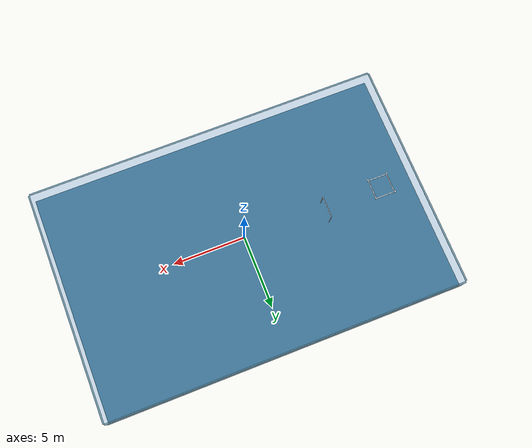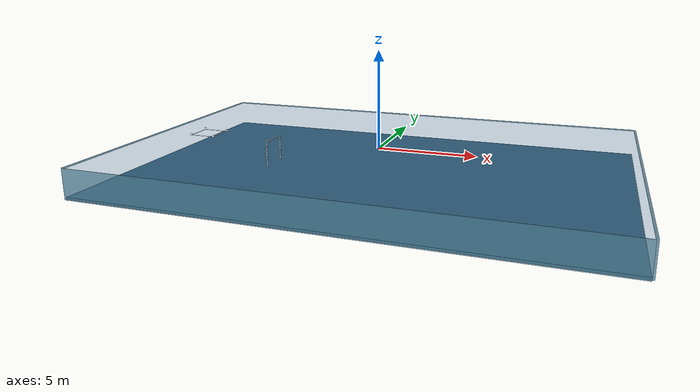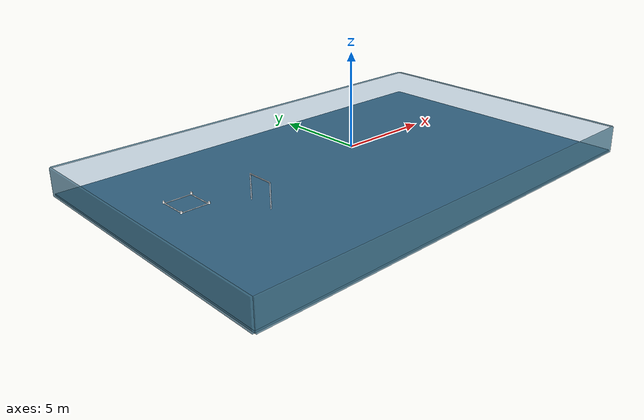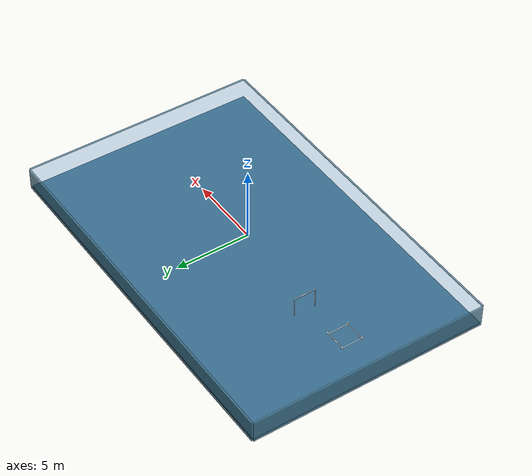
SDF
<sdf version="1.6">
 <world name="sauvc_qualification">
  <scene><ambient>0.1 0.3 0.4</ambient><background>0.0 0.3 0.5</background><shadows>true</shadows></scene>
  <physics name="default" type="ode">
   <max_step_size>0.001</max_step_size>
   <real_time_factor>1.0</real_time_factor>
   <real_time_update_rate>1000</real_time_update_rate>
   <gravity>0 0 -9.81</gravity>
  </physics>
  <plugin name="ignition::gazebo::systems::Physics" filename="ignition-gazebo-physics-system"/>
  <plugin name="ignition::gazebo::systems::UserCommands" filename="ignition-gazebo-user-commands-system"/>
  <plugin name="ignition::gazebo::systems::SceneBroadcaster" filename="ignition-gazebo-scene-broadcaster-system"/>
  <plugin filename="ignition-gazebo-sensors-system" name="ignition::gazebo::systems::Sensors">
   <render_engine>ogre2</render_engine>
  </plugin>
  <plugin filename="ignition-gazebo-contact-system" name="ignition::gazebo::systems::Contact"/>
  <plugin filename="ignition-gazebo-buoyancy-system" name="ignition::gazebo::systems::Buoyancy">
   <uniform_fluid_density>1000</uniform_fluid_density>
  </plugin>
  <light type="directional" name="sun">
   <pose>0 0 10 0 0 0</pose>
   <diffuse>0.8 0.8 0.8 1</diffuse>
   <specular>0.3 0.3 0.3 1</specular>
   <attenuation>
    <range>1000</range>
    <constant>0.9</constant>
    <linear>0.01</linear>
    <quadratic>0.001</quadratic>
   </attenuation>
   <direction>-0.5 0.1 -0.9</direction>
  </light>
  <model name="qualification_pool">
   <static>true</static>
   <link name="pool_link">
    <collision name="floor_collision">
     <pose>0 0 -1.4 0 0 0</pose>
     <geometry><box><size>25 16 0.1</size></box></geometry>
    </collision>
    <visual name="floor_visual">
     <pose>0 0 -1.4 0 0 0</pose>
     <geometry><box><size>25 16 0.1</size></box></geometry>
     <material>
      <ambient>0.2 0.4 0.5 1</ambient>
      <diffuse>0.2 0.4 0.5 1</diffuse>
      <specular>0.1 0.1 0.1 1</specular>
     </material>
    </visual>
    <collision name="wall1_collision">
     <pose>0 8.05 -0.7 0 0 0</pose>
     <geometry><box><size>25 0.1 1.5</size></box></geometry>
    </collision>
    <visual name="wall1_visual">
     <pose>0 8.05 -0.7 0 0 0</pose>
     <geometry><box><size>25 0.1 1.5</size></box></geometry>
     <material>
      <ambient>0.3 0.5 0.6 0.8</ambient>
      <diffuse>0.3 0.5 0.6 0.8</diffuse>
      <specular>0.2 0.2 0.2 1</specular>
     </material>
    </visual>
    <collision name="wall2_collision">
     <pose>0 -8.05 -0.7 0 0 0</pose>
     <geometry><box><size>25 0.1 1.5</size></box></geometry>
    </collision>
    <visual name="wall2_visual">
     <pose>0 -8.05 -0.7 0 0 0</pose>
     <geometry><box><size>25 0.1 1.5</size></box></geometry>
     <material>
      <ambient>0.3 0.5 0.6 0.8</ambient>
      <diffuse>0.3 0.5 0.6 0.8</diffuse>
      <specular>0.2 0.2 0.2 1</specular>
     </material>
    </visual>
    <collision name="wall3_collision">
     <pose>12.55 0 -0.7 0 0 0</pose>
     <geometry><box><size>0.1 16 1.5</size></box></geometry>
    </collision>
    <visual name="wall3_visual">
     <pose>12.55 0 -0.7 0 0 0</pose>
     <geometry><box><size>0.1 16 1.5</size></box></geometry>
     <material>
      <ambient>0.3 0.5 0.6 0.8</ambient>
      <diffuse>0.3 0.5 0.6 0.8</diffuse>
      <specular>0.2 0.2 0.2 1</specular>
     </material>
    </visual>
    <collision name="wall4_collision">
     <pose>-12.55 0 -0.7 0 0 0</pose>
     <geometry><box><size>0.1 16 1.5</size></box></geometry>
    </collision>
    <visual name="wall4_visual">
     <pose>-12.55 0 -0.7 0 0 0</pose>
     <geometry><box><size>0.1 16 1.5</size></box></geometry>
     <material>
      <ambient>0.3 0.5 0.6 0.8</ambient>
      <diffuse>0.3 0.5 0.6 0.8</diffuse>
      <specular>0.2 0.2 0.2 1</specular>
     </material>
    </visual>
    <visual name="water_surface">
     <geometry><box><size>25 16 0.01</size></box></geometry>
     <material>
      <ambient>0.3 0.5 0.7 0.3</ambient>
      <diffuse>0.3 0.5 0.7 0.3</diffuse>
      <specular>0.5 0.5 0.5 0.3</specular>
     </material>
    </visual>
   </link>
  </model>
  <model name="starting_zone">
   <static>true</static>
   <pose>-10 0 0.005 0 0 0</pose>
   <link name="zone_link">
    <visual name="strip_top">
     <pose>0 0.675 0 0 0 0</pose>
     <geometry><box><size>1.4 0.05 0.01</size></box></geometry>
     <material><ambient>1 1 1 1</ambient><diffuse>1 1 1 1</diffuse><emissive>1 1 1 1</emissive></material>
    </visual>
    <visual name="strip_bottom">
     <pose>0 -0.675 0 0 0 0</pose>
     <geometry><box><size>1.4 0.05 0.01</size></box></geometry>
     <material><ambient>1 1 1 1</ambient><diffuse>1 1 1 1</diffuse><emissive>1 1 1 1</emissive></material>
    </visual>
    <visual name="strip_left">
     <pose>-0.675 0 0 0 0 0</pose>
     <geometry><box><size>0.05 1.3 0.01</size></box></geometry>
     <material><ambient>1 1 1 1</ambient><diffuse>1 1 1 1</diffuse><emissive>1 1 1 1</emissive></material>
    </visual>
    <visual name="strip_right">
     <pose>0.675 0 0 0 0 0</pose>
     <geometry><box><size>0.05 1.3 0.01</size></box></geometry>
     <material><ambient>1 1 1 1</ambient><diffuse>1 1 1 1</diffuse><emissive>1 1 1 1</emissive></material>
    </visual>
    <visual name="corner_fl">
     <pose>-0.7 -0.7 0.05 0 0 0</pose>
     <geometry><cylinder><radius>0.05</radius><length>0.1</length></cylinder></geometry>
     <material><ambient>1 1 1 1</ambient><diffuse>1 1 1 1</diffuse><emissive>1 1 1 1</emissive></material>
    </visual>
    <visual name="corner_fr">
     <pose>-0.7 0.7 0.05 0 0 0</pose>
     <geometry><cylinder><radius>0.05</radius><length>0.1</length></cylinder></geometry>
     <material><ambient>1 1 1 1</ambient><diffuse>1 1 1 1</diffuse><emissive>1 1 1 1</emissive></material>
    </visual>
    <visual name="corner_bl">
     <pose>0.7 -0.7 0.05 0 0 0</pose>
     <geometry><cylinder><radius>0.05</radius><length>0.1</length></cylinder></geometry>
     <material><ambient>1 1 1 1</ambient><diffuse>1 1 1 1</diffuse><emissive>1 1 1 1</emissive></material>
    </visual>
    <visual name="corner_br">
     <pose>0.7 0.7 0.05 0 0 0</pose>
     <geometry><cylinder><radius>0.05</radius><length>0.1</length></cylinder></geometry>
     <material><ambient>1 1 1 1</ambient><diffuse>1 1 1 1</diffuse><emissive>1 1 1 1</emissive></material>
    </visual>
   </link>
  </model>
  <model name="qualification_gate">
   <static>true</static>
   <pose>-6 0 -0.7 0 0 0</pose>
   <link name="gate_link">
    <collision name="left_post_collision">
     <pose>0 -0.75 0 0 0 0</pose>
     <geometry><box><size>0.04 0.04 1.4</size></box></geometry>
    </collision>
    <visual name="left_post_visual">
     <pose>0 -0.75 0 0 0 0</pose>
     <geometry><box><size>0.04 0.04 1.4</size></box></geometry>
     <material>
      <ambient>0.95 0.95 0.95 1</ambient>
      <diffuse>0.95 0.95 0.95 1</diffuse>
      <specular>0.9 0.9 0.9 1</specular>
      <emissive>0.75 0.75 0.75 1</emissive>
     </material>
    </visual>
    <collision name="right_post_collision">
     <pose>0 0.75 0 0 0 0</pose>
     <geometry><box><size>0.04 0.04 1.4</size></box></geometry>
    </collision>
    <visual name="right_post_visual">
     <pose>0 0.75 0 0 0 0</pose>
     <geometry><box><size>0.04 0.04 1.4</size></box></geometry>
     <material>
      <ambient>0.95 0.95 0.95 1</ambient>
      <diffuse>0.95 0.95 0.95 1</diffuse>
      <specular>0.9 0.9 0.9 1</specular>
      <emissive>0.75 0.75 0.75 1</emissive>
     </material>
    </visual>
    <collision name="top_bar_collision">
     <pose>0 0 0.7 0 0 0</pose>
     <geometry><box><size>0.04 1.5 0.04</size></box></geometry>
    </collision>
    <visual name="top_bar_visual">
     <pose>0 0 0.7 0 0 0</pose>
     <geometry><box><size>0.04 1.5 0.04</size></box></geometry>
     <material>
      <ambient>1.0 1.0 1.0 1</ambient>
      <diffuse>1.0 1.0 1.0 1</diffuse>
      <specular>0.8 0.8 0.8 1</specular>
      <emissive>0.8 0.8 0.8 1</emissive>
     </material>
    </visual>
    <visual name="left_marker">
     <pose>0 -0.75 0 0 0 0</pose>
     <geometry><cylinder><radius>0.03</radius><length>1.4</length></cylinder></geometry>
     <material>
      <ambient>1.0 1.0 1.0 1</ambient>
      <diffuse>1.0 1.0 1.0 1</diffuse>
      <specular>0.95 0.95 0.95 1</specular>
      <emissive>0.85 0.85 0.85 1</emissive>
     </material>
    </visual>
    <visual name="right_marker">
     <pose>0 0.75 0 0 0 0</pose>
     <geometry><cylinder><radius>0.03</radius><length>1.4</length></cylinder></geometry>
     <material>
      <ambient>1.0 1.0 1.0 1</ambient>
      <diffuse>1.0 1.0 1.0 1</diffuse>
      <specular>0.95 0.95 0.95 1</specular>
      <emissive>0.85 0.85 0.85 1</emissive>
     </material>
    </visual>
   </link>
  </model>
  <model name="overhead_camera">
   <static>true</static>
   <link name="camera_link">
    <pose>0 0 3 0 1.57 0</pose>
    <sensor name="overhead_cam" type="camera">
     <camera>
      <horizontal_fov>2.0</horizontal_fov>
      <image><width>1920</width><height>1080</height></image>
      <clip><near>0.1</near><far>50</far></clip>
     </camera>
     <always_on>1</always_on>
     <update_rate>10</update_rate>
     <visualize>true</visualize>
     <topic>/overhead_camera</topic>
    </sensor>
   </link>
  </model>
 </world>
</sdf>
